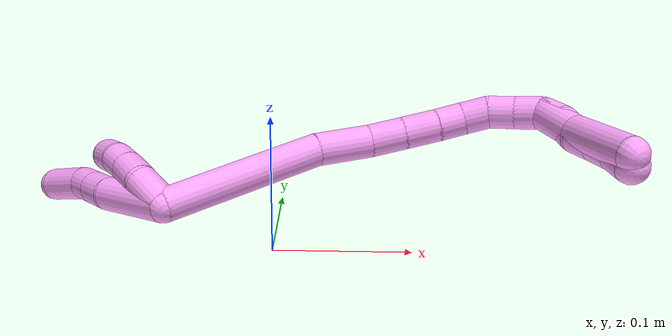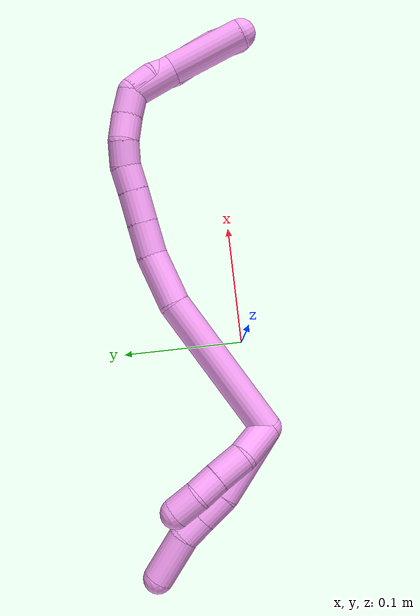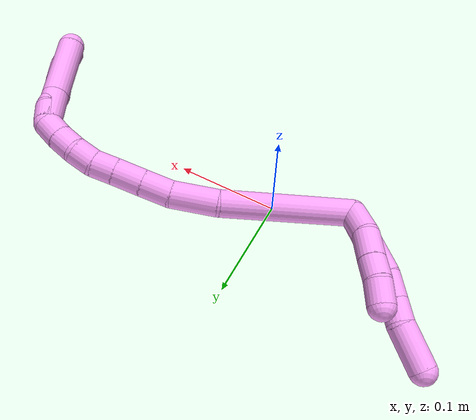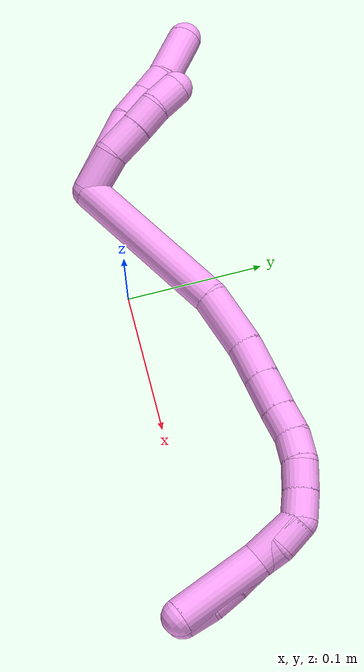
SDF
<sdf version="1.7">
 <world name="default">
  <model name="4">
   <static>0</static>
   <link name="4">
    <collision name="collision-cylinder-e_1_2_8">
     <pose>-0.015211 0.003416 0.027742 -0.122528 -0.498376 0.031217</pose>
     <geometry><cylinder><radius>0.0125</radius><length>0.063646</length></cylinder></geometry>
     <surface>
      <friction><ode><mu>1.16</mu><mu2>1.16</mu2><slip1>0</slip1><slip2>0</slip2></ode></friction>
      <contact><ode><kp>1e+06</kp><kd>1</kd><max_vel>0</max_vel><min_depth>0.001</min_depth></ode></contact>
     </surface>
    </collision>
    <visual name="visual-cylinder-e_1_2_8">
     <pose>-0.015211 0.003416 0.027742 -0.122528 -0.498376 0.031217</pose>
     <geometry><cylinder><radius>0.0125</radius><length>0.063646</length></cylinder></geometry>
     <material><ambient>1 0.65098 0.996078 1</ambient></material>
    </visual>
    <collision name="collision-cylinder-e_2_8_9">
     <pose>-0.033929 0.009135 0.067016 -0.197095 -0.289781 0.02885</pose>
     <geometry><cylinder><radius>0.0125</radius><length>0.024541</length></cylinder></geometry>
     <surface>
      <friction><ode><mu>1.16</mu><mu2>1.16</mu2><slip1>0</slip1><slip2>0</slip2></ode></friction>
      <contact><ode><kp>1e+06</kp><kd>1</kd><max_vel>0</max_vel><min_depth>0.001</min_depth></ode></contact>
     </surface>
    </collision>
    <visual name="visual-cylinder-e_2_8_9">
     <pose>-0.033929 0.009135 0.067016 -0.197095 -0.289781 0.02885</pose>
     <geometry><cylinder><radius>0.0125</radius><length>0.024541</length></cylinder></geometry>
     <material><ambient>1 0.65098 0.996078 1</ambient></material>
    </visual>
    <collision name="collision-cylinder-e_3_9_10">
     <pose>-0.040441 0.013393 0.088373 -0.196427 -0.291531 0.028928</pose>
     <geometry><cylinder><radius>0.0125</radius><length>0.020921</length></cylinder></geometry>
     <surface>
      <friction><ode><mu>1.16</mu><mu2>1.16</mu2><slip1>0</slip1><slip2>0</slip2></ode></friction>
      <contact><ode><kp>1e+06</kp><kd>1</kd><max_vel>0</max_vel><min_depth>0.001</min_depth></ode></contact>
     </surface>
    </collision>
    <visual name="visual-cylinder-e_3_9_10">
     <pose>-0.040441 0.013393 0.088373 -0.196427 -0.291531 0.028928</pose>
     <geometry><cylinder><radius>0.0125</radius><length>0.020921</length></cylinder></geometry>
     <material><ambient>1 0.65098 0.996078 1</ambient></material>
    </visual>
    <collision name="collision-cylinder-e_4_10_6">
     <pose>-0.054151 0.020231 0.114923 -0.284067 -0.550895 0.080787</pose>
     <geometry><cylinder><radius>0.0125</radius><length>0.040893</length></cylinder></geometry>
     <surface>
      <friction><ode><mu>1.16</mu><mu2>1.16</mu2><slip1>0</slip1><slip2>0</slip2></ode></friction>
      <contact><ode><kp>1e+06</kp><kd>1</kd><max_vel>0</max_vel><min_depth>0.001</min_depth></ode></contact>
     </surface>
    </collision>
    <visual name="visual-cylinder-e_4_10_6">
     <pose>-0.054151 0.020231 0.114923 -0.284067 -0.550895 0.080787</pose>
     <geometry><cylinder><radius>0.0125</radius><length>0.040893</length></cylinder></geometry>
     <material><ambient>1 0.65098 0.996078 1</ambient></material>
    </visual>
    <collision name="collision-cylinder-e_1_2_11">
     <pose>-0.003087 -0.003767 0.014744 0.250136 -0.200113 -0.025242</pose>
     <geometry><cylinder><radius>0.0125</radius><length>0.031054</length></cylinder></geometry>
     <surface>
      <friction><ode><mu>1.16</mu><mu2>1.16</mu2><slip1>0</slip1><slip2>0</slip2></ode></friction>
      <contact><ode><kp>1e+06</kp><kd>1</kd><max_vel>0</max_vel><min_depth>0.001</min_depth></ode></contact>
     </surface>
    </collision>
    <visual name="visual-cylinder-e_1_2_11">
     <pose>-0.003087 -0.003767 0.014744 0.250136 -0.200113 -0.025242</pose>
     <geometry><cylinder><radius>0.0125</radius><length>0.031054</length></cylinder></geometry>
     <material><ambient>1 0.65098 0.996078 1</ambient></material>
    </visual>
    <collision name="collision-cylinder-e_2_11_12">
     <pose>-0.007863 -0.007008 0.042592 -0.040103 -0.128114 0.002573</pose>
     <geometry><cylinder><radius>0.0125</radius><length>0.026447</length></cylinder></geometry>
     <surface>
      <friction><ode><mu>1.16</mu><mu2>1.16</mu2><slip1>0</slip1><slip2>0</slip2></ode></friction>
      <contact><ode><kp>1e+06</kp><kd>1</kd><max_vel>0</max_vel><min_depth>0.001</min_depth></ode></contact>
     </surface>
    </collision>
    <visual name="visual-cylinder-e_2_11_12">
     <pose>-0.007863 -0.007008 0.042592 -0.040103 -0.128114 0.002573</pose>
     <geometry><cylinder><radius>0.0125</radius><length>0.026447</length></cylinder></geometry>
     <material><ambient>1 0.65098 0.996078 1</ambient></material>
    </visual>
    <collision name="collision-cylinder-e_3_12_13">
     <pose>-0.011345 -0.006004 0.065601 -0.048248 -0.178911 0.004328</pose>
     <geometry><cylinder><radius>0.0125</radius><length>0.020153</length></cylinder></geometry>
     <surface>
      <friction><ode><mu>1.16</mu><mu2>1.16</mu2><slip1>0</slip1><slip2>0</slip2></ode></friction>
      <contact><ode><kp>1e+06</kp><kd>1</kd><max_vel>0</max_vel><min_depth>0.001</min_depth></ode></contact>
     </surface>
    </collision>
    <visual name="visual-cylinder-e_3_12_13">
     <pose>-0.011345 -0.006004 0.065601 -0.048248 -0.178911 0.004328</pose>
     <geometry><cylinder><radius>0.0125</radius><length>0.020153</length></cylinder></geometry>
     <material><ambient>1 0.65098 0.996078 1</ambient></material>
    </visual>
    <collision name="collision-cylinder-e_4_13_5">
     <pose>-0.01532 -0.002492 0.086035 -0.28049 -0.196512 0.02783</pose>
     <geometry><cylinder><radius>0.0125</radius><length>0.022345</length></cylinder></geometry>
     <surface>
      <friction><ode><mu>1.16</mu><mu2>1.16</mu2><slip1>0</slip1><slip2>0</slip2></ode></friction>
      <contact><ode><kp>1e+06</kp><kd>1</kd><max_vel>0</max_vel><min_depth>0.001</min_depth></ode></contact>
     </surface>
    </collision>
    <visual name="visual-cylinder-e_4_13_5">
     <pose>-0.01532 -0.002492 0.086035 -0.28049 -0.196512 0.02783</pose>
     <geometry><cylinder><radius>0.0125</radius><length>0.022345</length></cylinder></geometry>
     <material><ambient>1 0.65098 0.996078 1</ambient></material>
    </visual>
    <collision name="collision-cylinder-e_1_2_14">
     <pose>0.060375 0.011129 0.00586 -1.0861 1.36541 -0.912519</pose>
     <geometry><cylinder><radius>0.0125</radius><length>0.123342</length></cylinder></geometry>
     <surface>
      <friction><ode><mu>1.16</mu><mu2>1.16</mu2><slip1>0</slip1><slip2>0</slip2></ode></friction>
      <contact><ode><kp>1e+06</kp><kd>1</kd><max_vel>0</max_vel><min_depth>0.001</min_depth></ode></contact>
     </surface>
    </collision>
    <visual name="visual-cylinder-e_1_2_14">
     <pose>0.060375 0.011129 0.00586 -1.0861 1.36541 -0.912519</pose>
     <geometry><cylinder><radius>0.0125</radius><length>0.123342</length></cylinder></geometry>
     <material><ambient>1 0.65098 0.996078 1</ambient></material>
    </visual>
    <collision name="collision-cylinder-e_2_14_15">
     <pose>0.141175 0.027561 0.00901 -2.0434 1.28706 -1.77303</pose>
     <geometry><cylinder><radius>0.0125</radius><length>0.042551</length></cylinder></geometry>
     <surface>
      <friction><ode><mu>1.16</mu><mu2>1.16</mu2><slip1>0</slip1><slip2>0</slip2></ode></friction>
      <contact><ode><kp>1e+06</kp><kd>1</kd><max_vel>0</max_vel><min_depth>0.001</min_depth></ode></contact>
     </surface>
    </collision>
    <visual name="visual-cylinder-e_2_14_15">
     <pose>0.141175 0.027561 0.00901 -2.0434 1.28706 -1.77303</pose>
     <geometry><cylinder><radius>0.0125</radius><length>0.042551</length></cylinder></geometry>
     <material><ambient>1 0.65098 0.996078 1</ambient></material>
    </visual>
    <collision name="collision-cylinder-e_3_15_16">
     <pose>0.174663 0.034164 0.00296 -2.77027 1.30313 -2.65866</pose>
     <geometry><cylinder><radius>0.0125</radius><length>0.027091</length></cylinder></geometry>
     <surface>
      <friction><ode><mu>1.16</mu><mu2>1.16</mu2><slip1>0</slip1><slip2>0</slip2></ode></friction>
      <contact><ode><kp>1e+06</kp><kd>1</kd><max_vel>0</max_vel><min_depth>0.001</min_depth></ode></contact>
     </surface>
    </collision>
    <visual name="visual-cylinder-e_3_15_16">
     <pose>0.174663 0.034164 0.00296 -2.77027 1.30313 -2.65866</pose>
     <geometry><cylinder><radius>0.0125</radius><length>0.027091</length></cylinder></geometry>
     <material><ambient>1 0.65098 0.996078 1</ambient></material>
    </visual>
    <collision name="collision-cylinder-e_4_16_17">
     <pose>0.200496 0.036643 -0.003709 -2.80137 1.30085 -2.69753</pose>
     <geometry><cylinder><radius>0.0125</radius><length>0.0265</length></cylinder></geometry>
     <surface>
      <friction><ode><mu>1.16</mu><mu2>1.16</mu2><slip1>0</slip1><slip2>0</slip2></ode></friction>
      <contact><ode><kp>1e+06</kp><kd>1</kd><max_vel>0</max_vel><min_depth>0.001</min_depth></ode></contact>
     </surface>
    </collision>
    <visual name="visual-cylinder-e_4_16_17">
     <pose>0.200496 0.036643 -0.003709 -2.80137 1.30085 -2.69753</pose>
     <geometry><cylinder><radius>0.0125</radius><length>0.0265</length></cylinder></geometry>
     <material><ambient>1 0.65098 0.996078 1</ambient></material>
    </visual>
    <collision name="collision-cylinder-e_5_17_18">
     <pose>0.223196 0.038651 -0.009257 -2.78369 1.33681 -2.69122</pose>
     <geometry><cylinder><radius>0.0125</radius><length>0.020415</length></cylinder></geometry>
     <surface>
      <friction><ode><mu>1.16</mu><mu2>1.16</mu2><slip1>0</slip1><slip2>0</slip2></ode></friction>
      <contact><ode><kp>1e+06</kp><kd>1</kd><max_vel>0</max_vel><min_depth>0.001</min_depth></ode></contact>
     </surface>
    </collision>
    <visual name="visual-cylinder-e_5_17_18">
     <pose>0.223196 0.038651 -0.009257 -2.78369 1.33681 -2.69122</pose>
     <geometry><cylinder><radius>0.0125</radius><length>0.020415</length></cylinder></geometry>
     <material><ambient>1 0.65098 0.996078 1</ambient></material>
    </visual>
    <collision name="collision-cylinder-e_6_18_19">
     <pose>0.242235 0.038982 -0.015633 3.02252 1.1398 2.95609</pose>
     <geometry><cylinder><radius>0.0125</radius><length>0.020051</length></cylinder></geometry>
     <surface>
      <friction><ode><mu>1.16</mu><mu2>1.16</mu2><slip1>0</slip1><slip2>0</slip2></ode></friction>
      <contact><ode><kp>1e+06</kp><kd>1</kd><max_vel>0</max_vel><min_depth>0.001</min_depth></ode></contact>
     </surface>
    </collision>
    <visual name="visual-cylinder-e_6_18_19">
     <pose>0.242235 0.038982 -0.015633 3.02252 1.1398 2.95609</pose>
     <geometry><cylinder><radius>0.0125</radius><length>0.020051</length></cylinder></geometry>
     <material><ambient>1 0.65098 0.996078 1</ambient></material>
    </visual>
    <collision name="collision-cylinder-e_7_19_20">
     <pose>0.259017 0.039585 -0.026132 -2.96974 0.872988 -2.7764</pose>
     <geometry><cylinder><radius>0.0125</radius><length>0.02003</length></cylinder></geometry>
     <surface>
      <friction><ode><mu>1.16</mu><mu2>1.16</mu2><slip1>0</slip1><slip2>0</slip2></ode></friction>
      <contact><ode><kp>1e+06</kp><kd>1</kd><max_vel>0</max_vel><min_depth>0.001</min_depth></ode></contact>
     </surface>
    </collision>
    <visual name="visual-cylinder-e_7_19_20">
     <pose>0.259017 0.039585 -0.026132 -2.96974 0.872988 -2.7764</pose>
     <geometry><cylinder><radius>0.0125</radius><length>0.02003</length></cylinder></geometry>
     <material><ambient>1 0.65098 0.996078 1</ambient></material>
    </visual>
    <collision name="collision-cylinder-e_8_20_1">
     <pose>0.273937 0.041019 -0.039369 -3.09337 0.809478 -3.02913</pose>
     <geometry><cylinder><radius>0.0125</radius><length>0.020019</length></cylinder></geometry>
     <surface>
      <friction><ode><mu>1.16</mu><mu2>1.16</mu2><slip1>0</slip1><slip2>0</slip2></ode></friction>
      <contact><ode><kp>1e+06</kp><kd>1</kd><max_vel>0</max_vel><min_depth>0.001</min_depth></ode></contact>
     </surface>
    </collision>
    <visual name="visual-cylinder-e_8_20_1">
     <pose>0.273937 0.041019 -0.039369 -3.09337 0.809478 -3.02913</pose>
     <geometry><cylinder><radius>0.0125</radius><length>0.020019</length></cylinder></geometry>
     <material><ambient>1 0.65098 0.996078 1</ambient></material>
    </visual>
    <collision name="collision-cylinder-e_1_1_21">
     <pose>0.281751 0.040532 -0.064857 3.09752 0.030478 1.21003</pose>
     <geometry><cylinder><radius>0.0125</radius><length>0.037234</length></cylinder></geometry>
     <surface>
      <friction><ode><mu>1.16</mu><mu2>1.16</mu2><slip1>0</slip1><slip2>0</slip2></ode></friction>
      <contact><ode><kp>1e+06</kp><kd>1</kd><max_vel>0</max_vel><min_depth>0.001</min_depth></ode></contact>
     </surface>
    </collision>
    <visual name="visual-cylinder-e_1_1_21">
     <pose>0.281751 0.040532 -0.064857 3.09752 0.030478 1.21003</pose>
     <geometry><cylinder><radius>0.0125</radius><length>0.037234</length></cylinder></geometry>
     <material><ambient>1 0.65098 0.996078 1</ambient></material>
    </visual>
    <collision name="collision-cylinder-e_2_21_4">
     <pose>0.28192 0.032363 -0.113955 2.90521 -0.01268 -0.106685</pose>
     <geometry><cylinder><radius>0.0125</radius><length>0.062766</length></cylinder></geometry>
     <surface>
      <friction><ode><mu>1.16</mu><mu2>1.16</mu2><slip1>0</slip1><slip2>0</slip2></ode></friction>
      <contact><ode><kp>1e+06</kp><kd>1</kd><max_vel>0</max_vel><min_depth>0.001</min_depth></ode></contact>
     </surface>
    </collision>
    <visual name="visual-cylinder-e_2_21_4">
     <pose>0.28192 0.032363 -0.113955 2.90521 -0.01268 -0.106685</pose>
     <geometry><cylinder><radius>0.0125</radius><length>0.062766</length></cylinder></geometry>
     <material><ambient>1 0.65098 0.996078 1</ambient></material>
    </visual>
    <collision name="collision-cylinder-e_1_1_22">
     <pose>0.282609 0.040976 -0.056157 3.10367 0.143015 2.62403</pose>
     <geometry><cylinder><radius>0.0125</radius><length>0.02</length></cylinder></geometry>
     <surface>
      <friction><ode><mu>1.16</mu><mu2>1.16</mu2><slip1>0</slip1><slip2>0</slip2></ode></friction>
      <contact><ode><kp>1e+06</kp><kd>1</kd><max_vel>0</max_vel><min_depth>0.001</min_depth></ode></contact>
     </surface>
    </collision>
    <visual name="visual-cylinder-e_1_1_22">
     <pose>0.282609 0.040976 -0.056157 3.10367 0.143015 2.62403</pose>
     <geometry><cylinder><radius>0.0125</radius><length>0.02</length></cylinder></geometry>
     <material><ambient>1 0.65098 0.996078 1</ambient></material>
    </visual>
    <collision name="collision-cylinder-e_2_22_23">
     <pose>0.282623 0.041139 -0.075933 -3.08724 -0.141601 2.40952</pose>
     <geometry><cylinder><radius>0.0125</radius><length>0.02</length></cylinder></geometry>
     <surface>
      <friction><ode><mu>1.16</mu><mu2>1.16</mu2><slip1>0</slip1><slip2>0</slip2></ode></friction>
      <contact><ode><kp>1e+06</kp><kd>1</kd><max_vel>0</max_vel><min_depth>0.001</min_depth></ode></contact>
     </surface>
    </collision>
    <visual name="visual-cylinder-e_2_22_23">
     <pose>0.282623 0.041139 -0.075933 -3.08724 -0.141601 2.40952</pose>
     <geometry><cylinder><radius>0.0125</radius><length>0.02</length></cylinder></geometry>
     <material><ambient>1 0.65098 0.996078 1</ambient></material>
    </visual>
    <collision name="collision-cylinder-e_3_23_24">
     <pose>0.282097 0.040549 -0.095715 3.02814 0.088693 1.32667</pose>
     <geometry><cylinder><radius>0.0125</radius><length>0.02</length></cylinder></geometry>
     <surface>
      <friction><ode><mu>1.16</mu><mu2>1.16</mu2><slip1>0</slip1><slip2>0</slip2></ode></friction>
      <contact><ode><kp>1e+06</kp><kd>1</kd><max_vel>0</max_vel><min_depth>0.001</min_depth></ode></contact>
     </surface>
    </collision>
    <visual name="visual-cylinder-e_3_23_24">
     <pose>0.282097 0.040549 -0.095715 3.02814 0.088693 1.32667</pose>
     <geometry><cylinder><radius>0.0125</radius><length>0.02</length></cylinder></geometry>
     <material><ambient>1 0.65098 0.996078 1</ambient></material>
    </visual>
    <collision name="collision-cylinder-e_4_24_25">
     <pose>0.283263 0.037991 -0.115505 2.99804 0.027999 0.384626</pose>
     <geometry><cylinder><radius>0.0125</radius><length>0.02</length></cylinder></geometry>
     <surface>
      <friction><ode><mu>1.16</mu><mu2>1.16</mu2><slip1>0</slip1><slip2>0</slip2></ode></friction>
      <contact><ode><kp>1e+06</kp><kd>1</kd><max_vel>0</max_vel><min_depth>0.001</min_depth></ode></contact>
     </surface>
    </collision>
    <visual name="visual-cylinder-e_4_24_25">
     <pose>0.283263 0.037991 -0.115505 2.99804 0.027999 0.384626</pose>
     <geometry><cylinder><radius>0.0125</radius><length>0.02</length></cylinder></geometry>
     <material><ambient>1 0.65098 0.996078 1</ambient></material>
    </visual>
    <collision name="collision-cylinder-e_5_25_3">
     <pose>0.282063 0.035399 -0.135219 3.02376 -0.148575 -1.80125</pose>
     <geometry><cylinder><radius>0.0125</radius><length>0.02</length></cylinder></geometry>
     <surface>
      <friction><ode><mu>1.16</mu><mu2>1.16</mu2><slip1>0</slip1><slip2>0</slip2></ode></friction>
      <contact><ode><kp>1e+06</kp><kd>1</kd><max_vel>0</max_vel><min_depth>0.001</min_depth></ode></contact>
     </surface>
    </collision>
    <visual name="visual-cylinder-e_5_25_3">
     <pose>0.282063 0.035399 -0.135219 3.02376 -0.148575 -1.80125</pose>
     <geometry><cylinder><radius>0.0125</radius><length>0.02</length></cylinder></geometry>
     <material><ambient>1 0.65098 0.996078 1</ambient></material>
    </visual>
    <collision name="collision-sphere-3">
     <pose>0.280582 0.034236 -0.145041 0 -0 0</pose>
     <geometry><sphere><radius>0.0125</radius></sphere></geometry>
     <surface>
      <friction><ode><mu>1.16</mu><mu2>1.16</mu2><slip1>0</slip1><slip2>0</slip2></ode></friction>
      <contact><ode><kp>1e+06</kp><kd>1</kd><max_vel>0</max_vel><min_depth>0.001</min_depth></ode></contact>
     </surface>
    </collision>
    <visual name="visual-sphere-3">
     <pose>0.280582 0.034236 -0.145041 0 -0 0</pose>
     <geometry><sphere><radius>0.0125</radius></sphere></geometry>
     <material><ambient>1 0.65098 0.996078 1</ambient></material>
    </visual>
    <collision name="collision-sphere-25">
     <pose>0.283543 0.036561 -0.125398 0 -0 0</pose>
     <geometry><sphere><radius>0.0125</radius></sphere></geometry>
     <surface>
      <friction><ode><mu>1.16</mu><mu2>1.16</mu2><slip1>0</slip1><slip2>0</slip2></ode></friction>
      <contact><ode><kp>1e+06</kp><kd>1</kd><max_vel>0</max_vel><min_depth>0.001</min_depth></ode></contact>
     </surface>
    </collision>
    <visual name="visual-sphere-25">
     <pose>0.283543 0.036561 -0.125398 0 -0 0</pose>
     <geometry><sphere><radius>0.0125</radius></sphere></geometry>
     <material><ambient>1 0.65098 0.996078 1</ambient></material>
    </visual>
    <collision name="collision-sphere-24">
     <pose>0.282983 0.039421 -0.105612 0 -0 0</pose>
     <geometry><sphere><radius>0.0125</radius></sphere></geometry>
     <surface>
      <friction><ode><mu>1.16</mu><mu2>1.16</mu2><slip1>0</slip1><slip2>0</slip2></ode></friction>
      <contact><ode><kp>1e+06</kp><kd>1</kd><max_vel>0</max_vel><min_depth>0.001</min_depth></ode></contact>
     </surface>
    </collision>
    <visual name="visual-sphere-24">
     <pose>0.282983 0.039421 -0.105612 0 -0 0</pose>
     <geometry><sphere><radius>0.0125</radius></sphere></geometry>
     <material><ambient>1 0.65098 0.996078 1</ambient></material>
    </visual>
    <collision name="collision-sphere-23">
     <pose>0.281211 0.041677 -0.085818 0 -0 0</pose>
     <geometry><sphere><radius>0.0125</radius></sphere></geometry>
     <surface>
      <friction><ode><mu>1.16</mu><mu2>1.16</mu2><slip1>0</slip1><slip2>0</slip2></ode></friction>
      <contact><ode><kp>1e+06</kp><kd>1</kd><max_vel>0</max_vel><min_depth>0.001</min_depth></ode></contact>
     </surface>
    </collision>
    <visual name="visual-sphere-23">
     <pose>0.281211 0.041677 -0.085818 0 -0 0</pose>
     <geometry><sphere><radius>0.0125</radius></sphere></geometry>
     <material><ambient>1 0.65098 0.996078 1</ambient></material>
    </visual>
    <collision name="collision-sphere-22">
     <pose>0.284034 0.040601 -0.066048 0 -0 0</pose>
     <geometry><sphere><radius>0.0125</radius></sphere></geometry>
     <surface>
      <friction><ode><mu>1.16</mu><mu2>1.16</mu2><slip1>0</slip1><slip2>0</slip2></ode></friction>
      <contact><ode><kp>1e+06</kp><kd>1</kd><max_vel>0</max_vel><min_depth>0.001</min_depth></ode></contact>
     </surface>
    </collision>
    <visual name="visual-sphere-22">
     <pose>0.284034 0.040601 -0.066048 0 -0 0</pose>
     <geometry><sphere><radius>0.0125</radius></sphere></geometry>
     <material><ambient>1 0.65098 0.996078 1</ambient></material>
    </visual>
    <collision name="collision-sphere-4">
     <pose>0.281522 0.025014 -0.144462 0 -0 0</pose>
     <geometry><sphere><radius>0.0125</radius></sphere></geometry>
     <surface>
      <friction><ode><mu>1.16</mu><mu2>1.16</mu2><slip1>0</slip1><slip2>0</slip2></ode></friction>
      <contact><ode><kp>1e+06</kp><kd>1</kd><max_vel>0</max_vel><min_depth>0.001</min_depth></ode></contact>
     </surface>
    </collision>
    <visual name="visual-sphere-4">
     <pose>0.281522 0.025014 -0.144462 0 -0 0</pose>
     <geometry><sphere><radius>0.0125</radius></sphere></geometry>
     <material><ambient>1 0.65098 0.996078 1</ambient></material>
    </visual>
    <collision name="collision-sphere-21">
     <pose>0.282318 0.039712 -0.083447 0 -0 0</pose>
     <geometry><sphere><radius>0.0125</radius></sphere></geometry>
     <surface>
      <friction><ode><mu>1.16</mu><mu2>1.16</mu2><slip1>0</slip1><slip2>0</slip2></ode></friction>
      <contact><ode><kp>1e+06</kp><kd>1</kd><max_vel>0</max_vel><min_depth>0.001</min_depth></ode></contact>
     </surface>
    </collision>
    <visual name="visual-sphere-21">
     <pose>0.282318 0.039712 -0.083447 0 -0 0</pose>
     <geometry><sphere><radius>0.0125</radius></sphere></geometry>
     <material><ambient>1 0.65098 0.996078 1</ambient></material>
    </visual>
    <collision name="collision-sphere-1">
     <pose>0.281183 0.041351 -0.046266 0 -0 0</pose>
     <geometry><sphere><radius>0.0125</radius></sphere></geometry>
     <surface>
      <friction><ode><mu>1.16</mu><mu2>1.16</mu2><slip1>0</slip1><slip2>0</slip2></ode></friction>
      <contact><ode><kp>1e+06</kp><kd>1</kd><max_vel>0</max_vel><min_depth>0.001</min_depth></ode></contact>
     </surface>
    </collision>
    <visual name="visual-sphere-1">
     <pose>0.281183 0.041351 -0.046266 0 -0 0</pose>
     <geometry><sphere><radius>0.0125</radius></sphere></geometry>
     <material><ambient>1 0.65098 0.996078 1</ambient></material>
    </visual>
    <collision name="collision-sphere-11">
     <pose>-0.006173 -0.007534 0.029488 0 -0 0</pose>
     <geometry><sphere><radius>0.0125</radius></sphere></geometry>
     <surface>
      <friction><ode><mu>1.16</mu><mu2>1.16</mu2><slip1>0</slip1><slip2>0</slip2></ode></friction>
      <contact><ode><kp>1e+06</kp><kd>1</kd><max_vel>0</max_vel><min_depth>0.001</min_depth></ode></contact>
     </surface>
    </collision>
    <visual name="visual-sphere-11">
     <pose>-0.006173 -0.007534 0.029488 0 -0 0</pose>
     <geometry><sphere><radius>0.0125</radius></sphere></geometry>
     <material><ambient>1 0.65098 0.996078 1</ambient></material>
    </visual>
    <collision name="collision-sphere-6">
     <pose>-0.064853 0.025114 0.131646 0 -0 0</pose>
     <geometry><sphere><radius>0.0125</radius></sphere></geometry>
     <surface>
      <friction><ode><mu>1.16</mu><mu2>1.16</mu2><slip1>0</slip1><slip2>0</slip2></ode></friction>
      <contact><ode><kp>1e+06</kp><kd>1</kd><max_vel>0</max_vel><min_depth>0.001</min_depth></ode></contact>
     </surface>
    </collision>
    <visual name="visual-sphere-6">
     <pose>-0.064853 0.025114 0.131646 0 -0 0</pose>
     <geometry><sphere><radius>0.0125</radius></sphere></geometry>
     <material><ambient>1 0.65098 0.996078 1</ambient></material>
    </visual>
    <collision name="collision-sphere-10">
     <pose>-0.043448 0.015349 0.0982 0 -0 0</pose>
     <geometry><sphere><radius>0.0125</radius></sphere></geometry>
     <surface>
      <friction><ode><mu>1.16</mu><mu2>1.16</mu2><slip1>0</slip1><slip2>0</slip2></ode></friction>
      <contact><ode><kp>1e+06</kp><kd>1</kd><max_vel>0</max_vel><min_depth>0.001</min_depth></ode></contact>
     </surface>
    </collision>
    <visual name="visual-sphere-10">
     <pose>-0.043448 0.015349 0.0982 0 -0 0</pose>
     <geometry><sphere><radius>0.0125</radius></sphere></geometry>
     <material><ambient>1 0.65098 0.996078 1</ambient></material>
    </visual>
    <collision name="collision-sphere-9">
     <pose>-0.037435 0.011438 0.078547 0 -0 0</pose>
     <geometry><sphere><radius>0.0125</radius></sphere></geometry>
     <surface>
      <friction><ode><mu>1.16</mu><mu2>1.16</mu2><slip1>0</slip1><slip2>0</slip2></ode></friction>
      <contact><ode><kp>1e+06</kp><kd>1</kd><max_vel>0</max_vel><min_depth>0.001</min_depth></ode></contact>
     </surface>
    </collision>
    <visual name="visual-sphere-9">
     <pose>-0.037435 0.011438 0.078547 0 -0 0</pose>
     <geometry><sphere><radius>0.0125</radius></sphere></geometry>
     <material><ambient>1 0.65098 0.996078 1</ambient></material>
    </visual>
    <collision name="collision-sphere-2">
     <geometry><sphere><radius>0.0125</radius></sphere></geometry>
     <surface>
      <friction><ode><mu>1.16</mu><mu2>1.16</mu2><slip1>0</slip1><slip2>0</slip2></ode></friction>
      <contact><ode><kp>1e+06</kp><kd>1</kd><max_vel>0</max_vel><min_depth>0.001</min_depth></ode></contact>
     </surface>
    </collision>
    <visual name="visual-sphere-2">
     <geometry><sphere><radius>0.0125</radius></sphere></geometry>
     <material><ambient>1 0.65098 0.996078 1</ambient></material>
    </visual>
    <collision name="collision-sphere-19">
     <pose>0.251343 0.038485 -0.019791 0 -0 0</pose>
     <geometry><sphere><radius>0.0125</radius></sphere></geometry>
     <surface>
      <friction><ode><mu>1.16</mu><mu2>1.16</mu2><slip1>0</slip1><slip2>0</slip2></ode></friction>
      <contact><ode><kp>1e+06</kp><kd>1</kd><max_vel>0</max_vel><min_depth>0.001</min_depth></ode></contact>
     </surface>
    </collision>
    <visual name="visual-sphere-19">
     <pose>0.251343 0.038485 -0.019791 0 -0 0</pose>
     <geometry><sphere><radius>0.0125</radius></sphere></geometry>
     <material><ambient>1 0.65098 0.996078 1</ambient></material>
    </visual>
    <collision name="collision-sphere-8">
     <pose>-0.030423 0.006833 0.055485 0 -0 0</pose>
     <geometry><sphere><radius>0.0125</radius></sphere></geometry>
     <surface>
      <friction><ode><mu>1.16</mu><mu2>1.16</mu2><slip1>0</slip1><slip2>0</slip2></ode></friction>
      <contact><ode><kp>1e+06</kp><kd>1</kd><max_vel>0</max_vel><min_depth>0.001</min_depth></ode></contact>
     </surface>
    </collision>
    <visual name="visual-sphere-8">
     <pose>-0.030423 0.006833 0.055485 0 -0 0</pose>
     <geometry><sphere><radius>0.0125</radius></sphere></geometry>
     <material><ambient>1 0.65098 0.996078 1</ambient></material>
    </visual>
    <collision name="collision-sphere-12">
     <pose>-0.009552 -0.006482 0.055697 0 -0 0</pose>
     <geometry><sphere><radius>0.0125</radius></sphere></geometry>
     <surface>
      <friction><ode><mu>1.16</mu><mu2>1.16</mu2><slip1>0</slip1><slip2>0</slip2></ode></friction>
      <contact><ode><kp>1e+06</kp><kd>1</kd><max_vel>0</max_vel><min_depth>0.001</min_depth></ode></contact>
     </surface>
    </collision>
    <visual name="visual-sphere-12">
     <pose>-0.009552 -0.006482 0.055697 0 -0 0</pose>
     <geometry><sphere><radius>0.0125</radius></sphere></geometry>
     <material><ambient>1 0.65098 0.996078 1</ambient></material>
    </visual>
    <collision name="collision-sphere-13">
     <pose>-0.013138 -0.005526 0.075505 0 -0 0</pose>
     <geometry><sphere><radius>0.0125</radius></sphere></geometry>
     <surface>
      <friction><ode><mu>1.16</mu><mu2>1.16</mu2><slip1>0</slip1><slip2>0</slip2></ode></friction>
      <contact><ode><kp>1e+06</kp><kd>1</kd><max_vel>0</max_vel><min_depth>0.001</min_depth></ode></contact>
     </surface>
    </collision>
    <visual name="visual-sphere-13">
     <pose>-0.013138 -0.005526 0.075505 0 -0 0</pose>
     <geometry><sphere><radius>0.0125</radius></sphere></geometry>
     <material><ambient>1 0.65098 0.996078 1</ambient></material>
    </visual>
    <collision name="collision-sphere-5">
     <pose>-0.017501 0.000541 0.096564 0 -0 0</pose>
     <geometry><sphere><radius>0.0125</radius></sphere></geometry>
     <surface>
      <friction><ode><mu>1.16</mu><mu2>1.16</mu2><slip1>0</slip1><slip2>0</slip2></ode></friction>
      <contact><ode><kp>1e+06</kp><kd>1</kd><max_vel>0</max_vel><min_depth>0.001</min_depth></ode></contact>
     </surface>
    </collision>
    <visual name="visual-sphere-5">
     <pose>-0.017501 0.000541 0.096564 0 -0 0</pose>
     <geometry><sphere><radius>0.0125</radius></sphere></geometry>
     <material><ambient>1 0.65098 0.996078 1</ambient></material>
    </visual>
    <collision name="collision-sphere-14">
     <pose>0.12075 0.022258 0.011721 0 -0 0</pose>
     <geometry><sphere><radius>0.0125</radius></sphere></geometry>
     <surface>
      <friction><ode><mu>1.16</mu><mu2>1.16</mu2><slip1>0</slip1><slip2>0</slip2></ode></friction>
      <contact><ode><kp>1e+06</kp><kd>1</kd><max_vel>0</max_vel><min_depth>0.001</min_depth></ode></contact>
     </surface>
    </collision>
    <visual name="visual-sphere-14">
     <pose>0.12075 0.022258 0.011721 0 -0 0</pose>
     <geometry><sphere><radius>0.0125</radius></sphere></geometry>
     <material><ambient>1 0.65098 0.996078 1</ambient></material>
    </visual>
    <collision name="collision-sphere-15">
     <pose>0.1616 0.032864 0.006299 0 -0 0</pose>
     <geometry><sphere><radius>0.0125</radius></sphere></geometry>
     <surface>
      <friction><ode><mu>1.16</mu><mu2>1.16</mu2><slip1>0</slip1><slip2>0</slip2></ode></friction>
      <contact><ode><kp>1e+06</kp><kd>1</kd><max_vel>0</max_vel><min_depth>0.001</min_depth></ode></contact>
     </surface>
    </collision>
    <visual name="visual-sphere-15">
     <pose>0.1616 0.032864 0.006299 0 -0 0</pose>
     <geometry><sphere><radius>0.0125</radius></sphere></geometry>
     <material><ambient>1 0.65098 0.996078 1</ambient></material>
    </visual>
    <collision name="collision-sphere-16">
     <pose>0.187726 0.035463 -0.000378 0 -0 0</pose>
     <geometry><sphere><radius>0.0125</radius></sphere></geometry>
     <surface>
      <friction><ode><mu>1.16</mu><mu2>1.16</mu2><slip1>0</slip1><slip2>0</slip2></ode></friction>
      <contact><ode><kp>1e+06</kp><kd>1</kd><max_vel>0</max_vel><min_depth>0.001</min_depth></ode></contact>
     </surface>
    </collision>
    <visual name="visual-sphere-16">
     <pose>0.187726 0.035463 -0.000378 0 -0 0</pose>
     <geometry><sphere><radius>0.0125</radius></sphere></geometry>
     <material><ambient>1 0.65098 0.996078 1</ambient></material>
    </visual>
    <collision name="collision-sphere-17">
     <pose>0.213267 0.037822 -0.00704 0 -0 0</pose>
     <geometry><sphere><radius>0.0125</radius></sphere></geometry>
     <surface>
      <friction><ode><mu>1.16</mu><mu2>1.16</mu2><slip1>0</slip1><slip2>0</slip2></ode></friction>
      <contact><ode><kp>1e+06</kp><kd>1</kd><max_vel>0</max_vel><min_depth>0.001</min_depth></ode></contact>
     </surface>
    </collision>
    <visual name="visual-sphere-17">
     <pose>0.213267 0.037822 -0.00704 0 -0 0</pose>
     <geometry><sphere><radius>0.0125</radius></sphere></geometry>
     <material><ambient>1 0.65098 0.996078 1</ambient></material>
    </visual>
    <collision name="collision-sphere-18">
     <pose>0.233126 0.03948 -0.011474 0 -0 0</pose>
     <geometry><sphere><radius>0.0125</radius></sphere></geometry>
     <surface>
      <friction><ode><mu>1.16</mu><mu2>1.16</mu2><slip1>0</slip1><slip2>0</slip2></ode></friction>
      <contact><ode><kp>1e+06</kp><kd>1</kd><max_vel>0</max_vel><min_depth>0.001</min_depth></ode></contact>
     </surface>
    </collision>
    <visual name="visual-sphere-18">
     <pose>0.233126 0.03948 -0.011474 0 -0 0</pose>
     <geometry><sphere><radius>0.0125</radius></sphere></geometry>
     <material><ambient>1 0.65098 0.996078 1</ambient></material>
    </visual>
    <collision name="collision-sphere-20">
     <pose>0.266691 0.040686 -0.032472 0 -0 0</pose>
     <geometry><sphere><radius>0.0125</radius></sphere></geometry>
     <surface>
      <friction><ode><mu>1.16</mu><mu2>1.16</mu2><slip1>0</slip1><slip2>0</slip2></ode></friction>
      <contact><ode><kp>1e+06</kp><kd>1</kd><max_vel>0</max_vel><min_depth>0.001</min_depth></ode></contact>
     </surface>
    </collision>
    <visual name="visual-sphere-20">
     <pose>0.266691 0.040686 -0.032472 0 -0 0</pose>
     <geometry><sphere><radius>0.0125</radius></sphere></geometry>
     <material><ambient>1 0.65098 0.996078 1</ambient></material>
    </visual>
    <inertial>
     <pose>0.125717 0.021544 -0.006768 0 -0 0</pose>
     <mass>0.75</mass>
     <inertia>
      <ixx>7.2e-05</ixx>
      <ixy>0</ixy>
      <ixz>0</ixz>
      <iyy>0.000176</iyy>
      <iyz>0</iyz>
      <izz>-0.000189</izz>
     </inertia>
    </inertial>
   </link>
   <pose>-0.075061 -0.008753 0.037264 -1.40893 -0.336792 0.413202</pose>
  </model>
 </world>
</sdf>
